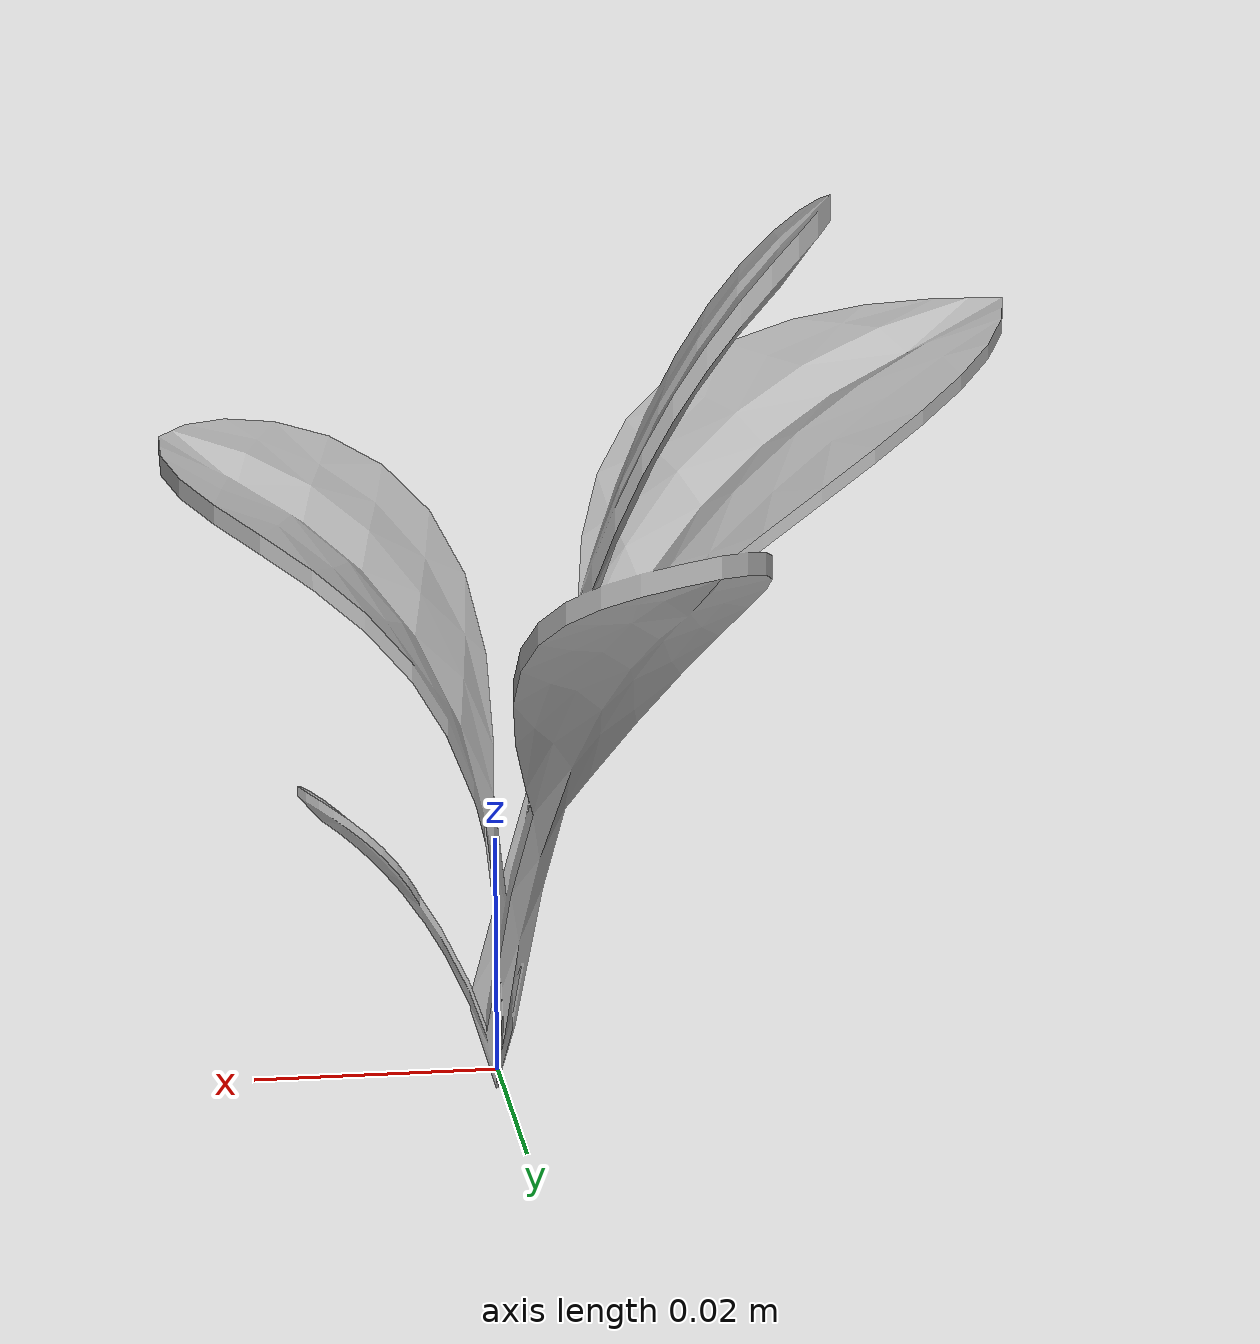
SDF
<sdf version="1.6">
  <model name="sugar_beet_5">
    <static>true</static>
    <link name="body">
      <visual name="visual">
        <geometry>
          <mesh>
            <uri>file:///sugar_beet_5/media/sugar_beet.dae</uri>
          </mesh>
        </geometry>
      </visual>
    </link>
  </model>
</sdf>
